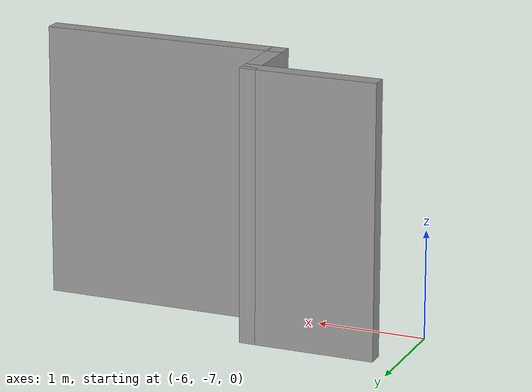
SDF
<?xml version='1.0'?>
<sdf version='1.6'>
  <model name='glass'>
    <pose frame=''>-2.8925 -3.5125 0 0 -0 0</pose>
    <link name='Wall_11'>
      <collision name='Wall_11_Collision'>
        <geometry>
          <box>
            <size>1.25 0.15 2.5</size>
          </box>
        </geometry>
        <pose frame=''>0 0 1.25 0 -0 0</pose>
      </collision>
      <visual name='Wall_11_Visual'>
        <pose frame=''>0 0 1.25 0 -0 0</pose>
        <geometry>
          <box>
            <size>1.25 0.15 2.5</size>
          </box>
        </geometry>
        <material>
          <script>
            <uri>file://media/materials/scripts/gazebo.material</uri>
            <name>Gazebo/Grey</name>
          </script>
          <ambient>1 1 1 1</ambient>
        </material>
        <meta>
          <layer>0</layer>
        </meta>
      </visual>
      <pose frame=''>-2.2675 -2.8375 0 0 -0 0</pose>
    </link>
    <link name='Wall_12'>
      <collision name='Wall_12_Collision'>
        <geometry>
          <box>
            <size>0.75 0.15 2.5</size>
          </box>
        </geometry>
        <pose frame=''>0 0 1.25 0 -0 0</pose>
      </collision>
      <visual name='Wall_12_Visual'>
        <pose frame=''>0 0 1.25 0 -0 0</pose>
        <geometry>
          <box>
            <size>0.75 0.15 2.5</size>
          </box>
        </geometry>
        <material>
          <script>
            <uri>file://media/materials/scripts/gazebo.material</uri>
            <name>Gazebo/Grey</name>
          </script>
          <ambient>1 1 1 1</ambient>
        </material>
        <meta>
          <layer>0</layer>
        </meta>
      </visual>
      <pose frame=''>-1.7175 -3.1375 0 0 -0 -1.5708</pose>
    </link>
    <link name='Wall_13'>
      <collision name='Wall_13_Collision'>
        <geometry>
          <box>
            <size>2.25 0.15 2.5</size>
          </box>
        </geometry>
        <pose frame=''>0 0 1.25 0 -0 0</pose>
      </collision>
      <visual name='Wall_13_Visual'>
        <pose frame=''>0 0 1.25 0 -0 0</pose>
        <geometry>
          <box>
            <size>2.25 0.15 2.5</size>
          </box>
        </geometry>
        <material>
          <script>
            <uri>file://media/materials/scripts/gazebo.material</uri>
            <name>Gazebo/Grey</name>
          </script>
          <ambient>1 1 1 1</ambient>
        </material>
        <meta>
          <layer>0</layer>
        </meta>
      </visual>
      <pose frame=''>-0.6675 -3.4375 0 0 -0 0</pose>
    </link>
    <static>1</static>
  </model>
</sdf>
